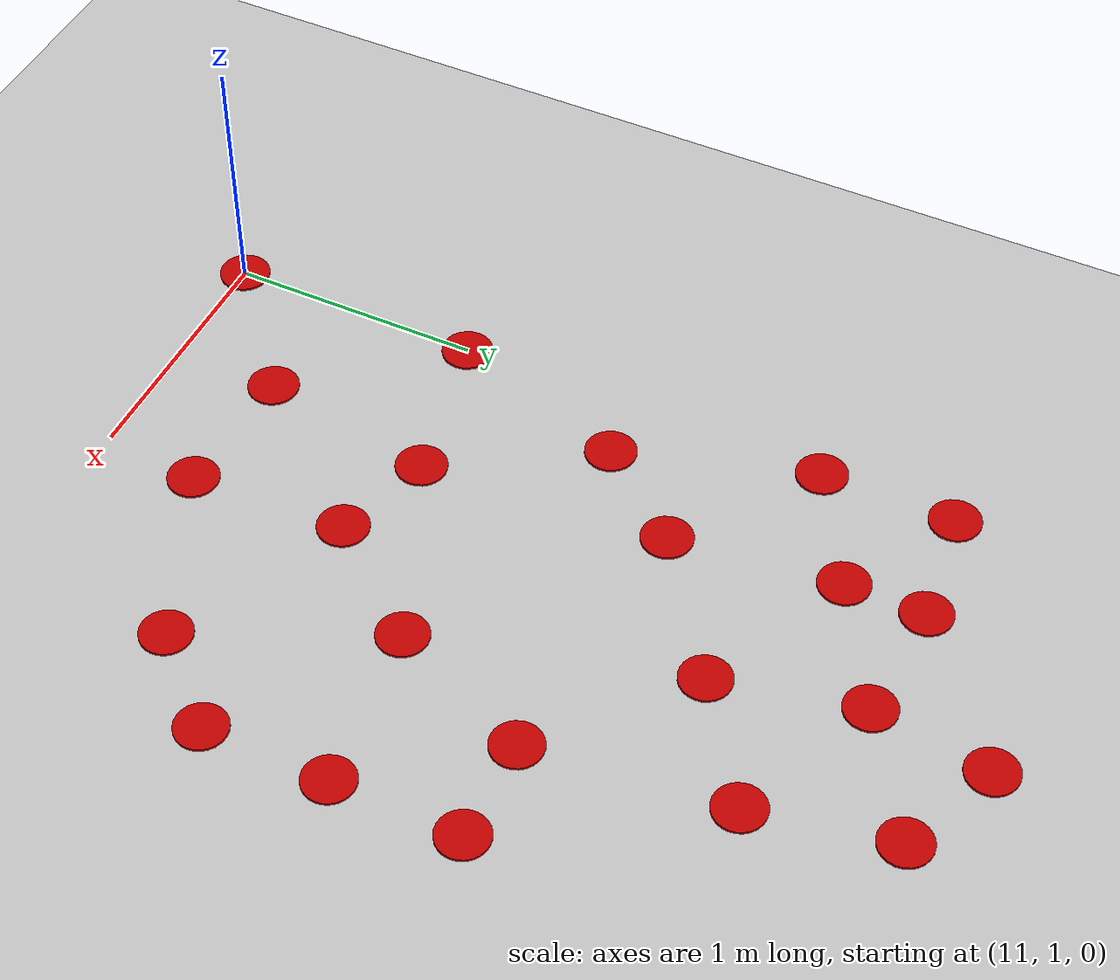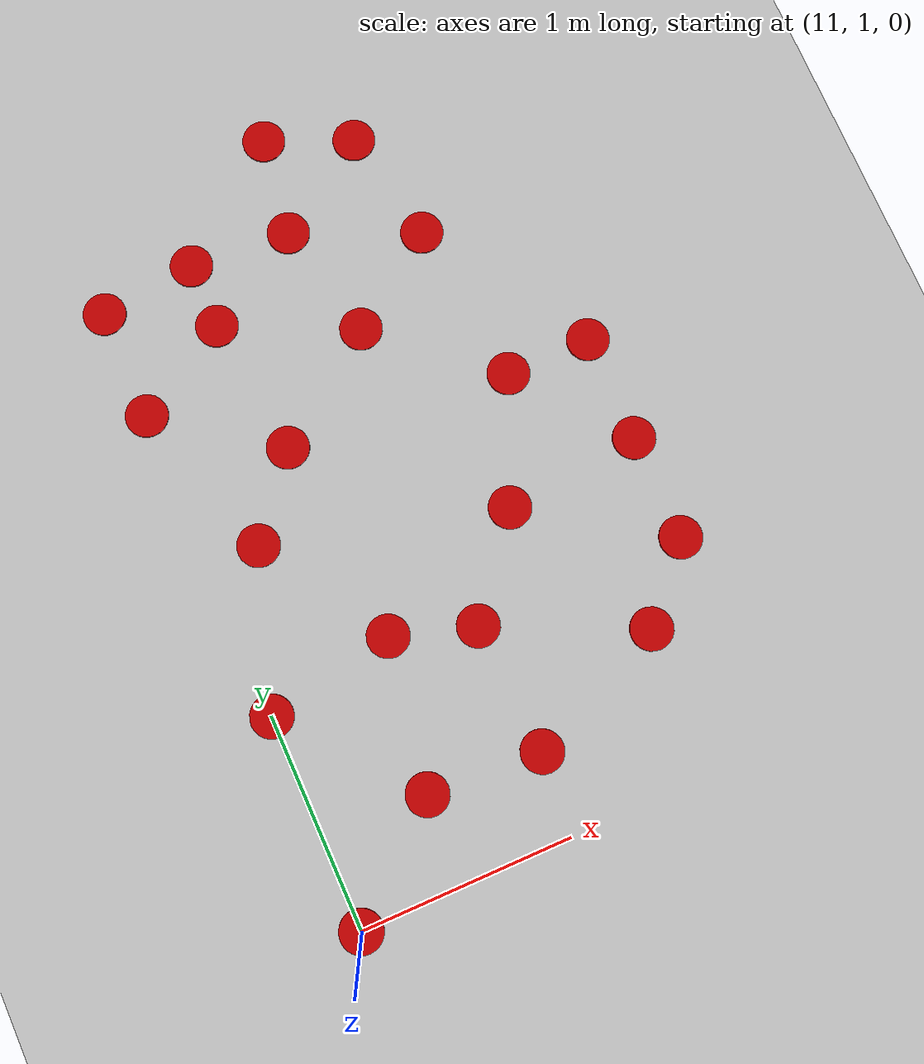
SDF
<sdf version="1.7">
 <world name="default">
  <model name="ground_plane">
   <static>1</static>
   <link name="link">
    <collision name="collision">
     <geometry><plane><normal>0 0 1</normal><size>100 100</size></plane></geometry>
     <surface>
      <contact><collide_bitmask>65535</collide_bitmask></contact>
      <friction><ode><mu>100</mu><mu2>50</mu2></ode></friction>
     </surface>
    </collision>
    <visual name="visual">
     <cast_shadows>0</cast_shadows>
     <geometry><plane><normal>0 0 1</normal><size>100 100</size></plane></geometry>
     <material>
      <script><uri>file://media/materials/scripts/gazebo.material</uri><name>Gazebo/Grey</name></script>
     </material>
    </visual>
   </link>
  </model>
  <model name="target_red">
   <link name="link">
    <inertial>
     <mass>1</mass>
     <inertia><ixx>0.145833</ixx><ixy>0</ixy><ixz>0</ixz><iyy>0.145833</iyy><iyz>0</iyz><izz>0.125</izz></inertia>
    </inertial>
    <visual name="visual">
     <geometry><cylinder><radius>0.1</radius><length>0.01</length></cylinder></geometry>
     <material>
      <script><name>Gazebo/Grey</name><uri>file://media/materials/scripts/gazebo.material</uri></script>
      <shader type="pixel"><normal_map>__default__</normal_map></shader>
      <ambient>0.8 0 0 1</ambient>
      <diffuse>0.8 0 0 1</diffuse>
      <specular>0.8 0 0 1</specular>
      <emissive>0 0 0 1</emissive>
     </material>
    </visual>
    <collision name="collision">
     <geometry><cylinder><radius>0.1</radius><length>0.01</length></cylinder></geometry>
     <surface>
      <friction>
       <ode><mu>1</mu><mu2>1</mu2><fdir1>0 0 0</fdir1><slip1>0</slip1><slip2>0</slip2></ode>
       <torsional>
        <coefficient>1</coefficient>
        <patch_radius>0</patch_radius>
        <surface_radius>0</surface_radius>
        <use_patch_radius>1</use_patch_radius>
        <ode><slip>0</slip></ode>
       </torsional>
      </friction>
      <bounce><restitution_coefficient>0</restitution_coefficient><threshold>1e+06</threshold></bounce>
      <contact>
       <collide_without_contact>0</collide_without_contact>
       <collide_without_contact_bitmask>1</collide_without_contact_bitmask>
       <collide_bitmask>1</collide_bitmask>
       <ode>
        <soft_cfm>0</soft_cfm>
        <soft_erp>0.2</soft_erp>
        <kp>1e+13</kp>
        <kd>1</kd>
        <max_vel>0.01</max_vel>
        <min_depth>0</min_depth>
       </ode>
       <bullet>
        <split_impulse>1</split_impulse>
        <split_impulse_penetration_threshold>-0.01</split_impulse_penetration_threshold>
        <soft_cfm>0</soft_cfm>
        <soft_erp>0.2</soft_erp>
        <kp>1e+13</kp>
        <kd>1</kd>
       </bullet>
      </contact>
     </surface>
    </collision>
   </link>
   <static>0</static>
   <pose>11.455 3.74189 0 0 -0 0</pose>
  </model>
  <model name="target_red_clone_0">
   <link name="link">
    <inertial>
     <mass>1</mass>
     <inertia><ixx>0.145833</ixx><ixy>0</ixy><ixz>0</ixz><iyy>0.145833</iyy><iyz>0</iyz><izz>0.125</izz></inertia>
    </inertial>
    <visual name="visual">
     <geometry><cylinder><radius>0.1</radius><length>0.01</length></cylinder></geometry>
     <material>
      <script><name>Gazebo/Grey</name><uri>file://media/materials/scripts/gazebo.material</uri></script>
      <shader type="pixel"><normal_map>__default__</normal_map></shader>
      <ambient>0.8 0 0 1</ambient>
      <diffuse>0.8 0 0 1</diffuse>
      <specular>0.8 0 0 1</specular>
      <emissive>0 0 0 1</emissive>
     </material>
    </visual>
    <collision name="collision">
     <geometry><cylinder><radius>0.1</radius><length>0.01</length></cylinder></geometry>
     <surface>
      <friction>
       <ode><mu>1</mu><mu2>1</mu2><fdir1>0 0 0</fdir1><slip1>0</slip1><slip2>0</slip2></ode>
       <torsional>
        <coefficient>1</coefficient>
        <patch_radius>0</patch_radius>
        <surface_radius>0</surface_radius>
        <use_patch_radius>1</use_patch_radius>
        <ode><slip>0</slip></ode>
       </torsional>
      </friction>
      <bounce><restitution_coefficient>0</restitution_coefficient><threshold>1e+06</threshold></bounce>
      <contact>
       <collide_without_contact>0</collide_without_contact>
       <collide_without_contact_bitmask>1</collide_without_contact_bitmask>
       <collide_bitmask>1</collide_bitmask>
       <ode>
        <soft_cfm>0</soft_cfm>
        <soft_erp>0.2</soft_erp>
        <kp>1e+13</kp>
        <kd>1</kd>
        <max_vel>0.01</max_vel>
        <min_depth>0</min_depth>
       </ode>
       <bullet>
        <split_impulse>1</split_impulse>
        <split_impulse_penetration_threshold>-0.01</split_impulse_penetration_threshold>
        <soft_cfm>0</soft_cfm>
        <soft_erp>0.2</soft_erp>
        <kp>1e+13</kp>
        <kd>1</kd>
       </bullet>
      </contact>
     </surface>
    </collision>
   </link>
   <static>0</static>
   <pose>12.06 3.46329 0 0 -0 0</pose>
  </model>
  <model name="target_red_clone_2">
   <link name="link">
    <inertial>
     <mass>1</mass>
     <inertia><ixx>0.145833</ixx><ixy>0</ixy><ixz>0</ixz><iyy>0.145833</iyy><iyz>0</iyz><izz>0.125</izz></inertia>
    </inertial>
    <visual name="visual">
     <geometry><cylinder><radius>0.1</radius><length>0.01</length></cylinder></geometry>
     <material>
      <script><name>Gazebo/Grey</name><uri>file://media/materials/scripts/gazebo.material</uri></script>
      <shader type="pixel"><normal_map>__default__</normal_map></shader>
      <ambient>0.8 0 0 1</ambient>
      <diffuse>0.8 0 0 1</diffuse>
      <specular>0.8 0 0 1</specular>
      <emissive>0 0 0 1</emissive>
     </material>
    </visual>
    <collision name="collision">
     <geometry><cylinder><radius>0.1</radius><length>0.01</length></cylinder></geometry>
     <surface>
      <friction>
       <ode><mu>1</mu><mu2>1</mu2><fdir1>0 0 0</fdir1><slip1>0</slip1><slip2>0</slip2></ode>
       <torsional>
        <coefficient>1</coefficient>
        <patch_radius>0</patch_radius>
        <surface_radius>0</surface_radius>
        <use_patch_radius>1</use_patch_radius>
        <ode><slip>0</slip></ode>
       </torsional>
      </friction>
      <bounce><restitution_coefficient>0</restitution_coefficient><threshold>1e+06</threshold></bounce>
      <contact>
       <collide_without_contact>0</collide_without_contact>
       <collide_without_contact_bitmask>1</collide_without_contact_bitmask>
       <collide_bitmask>1</collide_bitmask>
       <ode>
        <soft_cfm>0</soft_cfm>
        <soft_erp>0.2</soft_erp>
        <kp>1e+13</kp>
        <kd>1</kd>
        <max_vel>0.01</max_vel>
        <min_depth>0</min_depth>
       </ode>
       <bullet>
        <split_impulse>1</split_impulse>
        <split_impulse_penetration_threshold>-0.01</split_impulse_penetration_threshold>
        <soft_cfm>0</soft_cfm>
        <soft_erp>0.2</soft_erp>
        <kp>1e+13</kp>
        <kd>1</kd>
       </bullet>
      </contact>
     </surface>
    </collision>
   </link>
   <static>0</static>
   <pose>11.2388 2.72416 0 0 -0 0</pose>
  </model>
  <model name="target_red_clone_4">
   <link name="link">
    <inertial>
     <mass>1</mass>
     <inertia><ixx>0.145833</ixx><ixy>0</ixy><ixz>0</ixz><iyy>0.145833</iyy><iyz>0</iyz><izz>0.125</izz></inertia>
    </inertial>
    <visual name="visual">
     <geometry><cylinder><radius>0.1</radius><length>0.01</length></cylinder></geometry>
     <material>
      <script><name>Gazebo/Grey</name><uri>file://media/materials/scripts/gazebo.material</uri></script>
      <shader type="pixel"><normal_map>__default__</normal_map></shader>
      <ambient>0.8 0 0 1</ambient>
      <diffuse>0.8 0 0 1</diffuse>
      <specular>0.8 0 0 1</specular>
      <emissive>0 0 0 1</emissive>
     </material>
    </visual>
    <collision name="collision">
     <geometry><cylinder><radius>0.1</radius><length>0.01</length></cylinder></geometry>
     <surface>
      <friction>
       <ode><mu>1</mu><mu2>1</mu2><fdir1>0 0 0</fdir1><slip1>0</slip1><slip2>0</slip2></ode>
       <torsional>
        <coefficient>1</coefficient>
        <patch_radius>0</patch_radius>
        <surface_radius>0</surface_radius>
        <use_patch_radius>1</use_patch_radius>
        <ode><slip>0</slip></ode>
       </torsional>
      </friction>
      <bounce><restitution_coefficient>0</restitution_coefficient><threshold>1e+06</threshold></bounce>
      <contact>
       <collide_without_contact>0</collide_without_contact>
       <collide_without_contact_bitmask>1</collide_without_contact_bitmask>
       <collide_bitmask>1</collide_bitmask>
       <ode>
        <soft_cfm>0</soft_cfm>
        <soft_erp>0.2</soft_erp>
        <kp>1e+13</kp>
        <kd>1</kd>
        <max_vel>0.01</max_vel>
        <min_depth>0</min_depth>
       </ode>
       <bullet>
        <split_impulse>1</split_impulse>
        <split_impulse_penetration_threshold>-0.01</split_impulse_penetration_threshold>
        <soft_cfm>0</soft_cfm>
        <soft_erp>0.2</soft_erp>
        <kp>1e+13</kp>
        <kd>1</kd>
       </bullet>
      </contact>
     </surface>
    </collision>
   </link>
   <static>0</static>
   <pose>11.5344 3.08517 0 0 -0 0</pose>
  </model>
  <model name="target_red_clone_5">
   <link name="link">
    <inertial>
     <mass>1</mass>
     <inertia><ixx>0.145833</ixx><ixy>0</ixy><ixz>0</ixz><iyy>0.145833</iyy><iyz>0</iyz><izz>0.125</izz></inertia>
    </inertial>
    <visual name="visual">
     <geometry><cylinder><radius>0.1</radius><length>0.01</length></cylinder></geometry>
     <material>
      <script><name>Gazebo/Grey</name><uri>file://media/materials/scripts/gazebo.material</uri></script>
      <shader type="pixel"><normal_map>__default__</normal_map></shader>
      <ambient>0.8 0 0 1</ambient>
      <diffuse>0.8 0 0 1</diffuse>
      <specular>0.8 0 0 1</specular>
      <emissive>0 0 0 1</emissive>
     </material>
    </visual>
    <collision name="collision">
     <geometry><cylinder><radius>0.1</radius><length>0.01</length></cylinder></geometry>
     <surface>
      <friction>
       <ode><mu>1</mu><mu2>1</mu2><fdir1>0 0 0</fdir1><slip1>0</slip1><slip2>0</slip2></ode>
       <torsional>
        <coefficient>1</coefficient>
        <patch_radius>0</patch_radius>
        <surface_radius>0</surface_radius>
        <use_patch_radius>1</use_patch_radius>
        <ode><slip>0</slip></ode>
       </torsional>
      </friction>
      <bounce><restitution_coefficient>0</restitution_coefficient><threshold>1e+06</threshold></bounce>
      <contact>
       <collide_without_contact>0</collide_without_contact>
       <collide_without_contact_bitmask>1</collide_without_contact_bitmask>
       <collide_bitmask>1</collide_bitmask>
       <ode>
        <soft_cfm>0</soft_cfm>
        <soft_erp>0.2</soft_erp>
        <kp>1e+13</kp>
        <kd>1</kd>
        <max_vel>0.01</max_vel>
        <min_depth>0</min_depth>
       </ode>
       <bullet>
        <split_impulse>1</split_impulse>
        <split_impulse_penetration_threshold>-0.01</split_impulse_penetration_threshold>
        <soft_cfm>0</soft_cfm>
        <soft_erp>0.2</soft_erp>
        <kp>1e+13</kp>
        <kd>1</kd>
       </bullet>
      </contact>
     </surface>
    </collision>
   </link>
   <static>0</static>
   <pose>11 3.47823 0 0 -0 0</pose>
  </model>
  <model name="target_red_clone_7">
   <link name="link">
    <inertial>
     <mass>1</mass>
     <inertia><ixx>0.145833</ixx><ixy>0</ixy><ixz>0</ixz><iyy>0.145833</iyy><iyz>0</iyz><izz>0.125</izz></inertia>
    </inertial>
    <visual name="visual">
     <geometry><cylinder><radius>0.1</radius><length>0.01</length></cylinder></geometry>
     <material>
      <script><name>Gazebo/Grey</name><uri>file://media/materials/scripts/gazebo.material</uri></script>
      <shader type="pixel"><normal_map>__default__</normal_map></shader>
      <ambient>0.8 0 0 1</ambient>
      <diffuse>0.8 0 0 1</diffuse>
      <specular>0.8 0 0 1</specular>
      <emissive>0 0 0 1</emissive>
     </material>
    </visual>
    <collision name="collision">
     <geometry><cylinder><radius>0.1</radius><length>0.01</length></cylinder></geometry>
     <surface>
      <friction>
       <ode><mu>1</mu><mu2>1</mu2><fdir1>0 0 0</fdir1><slip1>0</slip1><slip2>0</slip2></ode>
       <torsional>
        <coefficient>1</coefficient>
        <patch_radius>0</patch_radius>
        <surface_radius>0</surface_radius>
        <use_patch_radius>1</use_patch_radius>
        <ode><slip>0</slip></ode>
       </torsional>
      </friction>
      <bounce><restitution_coefficient>0</restitution_coefficient><threshold>1e+06</threshold></bounce>
      <contact>
       <collide_without_contact>0</collide_without_contact>
       <collide_without_contact_bitmask>1</collide_without_contact_bitmask>
       <collide_bitmask>1</collide_bitmask>
       <ode>
        <soft_cfm>0</soft_cfm>
        <soft_erp>0.2</soft_erp>
        <kp>1e+13</kp>
        <kd>1</kd>
        <max_vel>0.01</max_vel>
        <min_depth>0</min_depth>
       </ode>
       <bullet>
        <split_impulse>1</split_impulse>
        <split_impulse_penetration_threshold>-0.01</split_impulse_penetration_threshold>
        <soft_cfm>0</soft_cfm>
        <soft_erp>0.2</soft_erp>
        <kp>1e+13</kp>
        <kd>1</kd>
       </bullet>
      </contact>
     </surface>
    </collision>
   </link>
   <static>0</static>
   <pose>11 4 0 0 -0 0</pose>
  </model>
  <model name="target_red_clone_8">
   <link name="link">
    <inertial>
     <mass>1</mass>
     <inertia><ixx>0.145833</ixx><ixy>0</ixy><ixz>0</ixz><iyy>0.145833</iyy><iyz>0</iyz><izz>0.125</izz></inertia>
    </inertial>
    <visual name="visual">
     <geometry><cylinder><radius>0.1</radius><length>0.01</length></cylinder></geometry>
     <material>
      <script><name>Gazebo/Grey</name><uri>file://media/materials/scripts/gazebo.material</uri></script>
      <shader type="pixel"><normal_map>__default__</normal_map></shader>
      <ambient>0.8 0 0 1</ambient>
      <diffuse>0.8 0 0 1</diffuse>
      <specular>0.8 0 0 1</specular>
      <emissive>0 0 0 1</emissive>
     </material>
    </visual>
    <collision name="collision">
     <geometry><cylinder><radius>0.1</radius><length>0.01</length></cylinder></geometry>
     <surface>
      <friction>
       <ode><mu>1</mu><mu2>1</mu2><fdir1>0 0 0</fdir1><slip1>0</slip1><slip2>0</slip2></ode>
       <torsional>
        <coefficient>1</coefficient>
        <patch_radius>0</patch_radius>
        <surface_radius>0</surface_radius>
        <use_patch_radius>1</use_patch_radius>
        <ode><slip>0</slip></ode>
       </torsional>
      </friction>
      <bounce><restitution_coefficient>0</restitution_coefficient><threshold>1e+06</threshold></bounce>
      <contact>
       <collide_without_contact>0</collide_without_contact>
       <collide_without_contact_bitmask>1</collide_without_contact_bitmask>
       <collide_bitmask>1</collide_bitmask>
       <ode>
        <soft_cfm>0</soft_cfm>
        <soft_erp>0.2</soft_erp>
        <kp>1e+13</kp>
        <kd>1</kd>
        <max_vel>0.01</max_vel>
        <min_depth>0</min_depth>
       </ode>
       <bullet>
        <split_impulse>1</split_impulse>
        <split_impulse_penetration_threshold>-0.01</split_impulse_penetration_threshold>
        <soft_cfm>0</soft_cfm>
        <soft_erp>0.2</soft_erp>
        <kp>1e+13</kp>
        <kd>1</kd>
       </bullet>
      </contact>
     </surface>
    </collision>
   </link>
   <static>0</static>
   <pose>11.4561 4.05437 0 0 -0 0</pose>
  </model>
  <model name="target_red_clone_9">
   <link name="link">
    <inertial>
     <mass>1</mass>
     <inertia><ixx>0.145833</ixx><ixy>0</ixy><ixz>0</ixz><iyy>0.145833</iyy><iyz>0</iyz><izz>0.125</izz></inertia>
    </inertial>
    <visual name="visual">
     <geometry><cylinder><radius>0.1</radius><length>0.01</length></cylinder></geometry>
     <material>
      <script><name>Gazebo/Grey</name><uri>file://media/materials/scripts/gazebo.material</uri></script>
      <shader type="pixel"><normal_map>__default__</normal_map></shader>
      <ambient>0.8 0 0 1</ambient>
      <diffuse>0.8 0 0 1</diffuse>
      <specular>0.8 0 0 1</specular>
      <emissive>0 0 0 1</emissive>
     </material>
    </visual>
    <collision name="collision">
     <geometry><cylinder><radius>0.1</radius><length>0.01</length></cylinder></geometry>
     <surface>
      <friction>
       <ode><mu>1</mu><mu2>1</mu2><fdir1>0 0 0</fdir1><slip1>0</slip1><slip2>0</slip2></ode>
       <torsional>
        <coefficient>1</coefficient>
        <patch_radius>0</patch_radius>
        <surface_radius>0</surface_radius>
        <use_patch_radius>1</use_patch_radius>
        <ode><slip>0</slip></ode>
       </torsional>
      </friction>
      <bounce><restitution_coefficient>0</restitution_coefficient><threshold>1e+06</threshold></bounce>
      <contact>
       <collide_without_contact>0</collide_without_contact>
       <collide_without_contact_bitmask>1</collide_without_contact_bitmask>
       <collide_bitmask>1</collide_bitmask>
       <ode>
        <soft_cfm>0</soft_cfm>
        <soft_erp>0.2</soft_erp>
        <kp>1e+13</kp>
        <kd>1</kd>
        <max_vel>0.01</max_vel>
        <min_depth>0</min_depth>
       </ode>
       <bullet>
        <split_impulse>1</split_impulse>
        <split_impulse_penetration_threshold>-0.01</split_impulse_penetration_threshold>
        <soft_cfm>0</soft_cfm>
        <soft_erp>0.2</soft_erp>
        <kp>1e+13</kp>
        <kd>1</kd>
       </bullet>
      </contact>
     </surface>
    </collision>
   </link>
   <static>0</static>
   <pose>11.9315 4.02206 0 0 -0 0</pose>
  </model>
  <model name="target_red_clone_10">
   <link name="link">
    <inertial>
     <mass>1</mass>
     <inertia><ixx>0.145833</ixx><ixy>0</ixy><ixz>0</ixz><iyy>0.145833</iyy><iyz>0</iyz><izz>0.125</izz></inertia>
    </inertial>
    <visual name="visual">
     <geometry><cylinder><radius>0.1</radius><length>0.01</length></cylinder></geometry>
     <material>
      <script><name>Gazebo/Grey</name><uri>file://media/materials/scripts/gazebo.material</uri></script>
      <shader type="pixel"><normal_map>__default__</normal_map></shader>
      <ambient>0.8 0 0 1</ambient>
      <diffuse>0.8 0 0 1</diffuse>
      <specular>0.8 0 0 1</specular>
      <emissive>0 0 0 1</emissive>
     </material>
    </visual>
    <collision name="collision">
     <geometry><cylinder><radius>0.1</radius><length>0.01</length></cylinder></geometry>
     <surface>
      <friction>
       <ode><mu>1</mu><mu2>1</mu2><fdir1>0 0 0</fdir1><slip1>0</slip1><slip2>0</slip2></ode>
       <torsional>
        <coefficient>1</coefficient>
        <patch_radius>0</patch_radius>
        <surface_radius>0</surface_radius>
        <use_patch_radius>1</use_patch_radius>
        <ode><slip>0</slip></ode>
       </torsional>
      </friction>
      <bounce><restitution_coefficient>0</restitution_coefficient><threshold>1e+06</threshold></bounce>
      <contact>
       <collide_without_contact>0</collide_without_contact>
       <collide_without_contact_bitmask>1</collide_without_contact_bitmask>
       <collide_bitmask>1</collide_bitmask>
       <ode>
        <soft_cfm>0</soft_cfm>
        <soft_erp>0.2</soft_erp>
        <kp>1e+13</kp>
        <kd>1</kd>
        <max_vel>0.01</max_vel>
        <min_depth>0</min_depth>
       </ode>
       <bullet>
        <split_impulse>1</split_impulse>
        <split_impulse_penetration_threshold>-0.01</split_impulse_penetration_threshold>
        <soft_cfm>0</soft_cfm>
        <soft_erp>0.2</soft_erp>
        <kp>1e+13</kp>
        <kd>1</kd>
       </bullet>
      </contact>
     </surface>
    </collision>
   </link>
   <static>0</static>
   <pose>12.5038 3.77602 0 0 -0 0</pose>
  </model>
  <model name="target_red_clone_11">
   <link name="link">
    <inertial>
     <mass>1</mass>
     <inertia><ixx>0.145833</ixx><ixy>0</ixy><ixz>0</ixz><iyy>0.145833</iyy><iyz>0</iyz><izz>0.125</izz></inertia>
    </inertial>
    <visual name="visual">
     <geometry><cylinder><radius>0.1</radius><length>0.01</length></cylinder></geometry>
     <material>
      <script><name>Gazebo/Grey</name><uri>file://media/materials/scripts/gazebo.material</uri></script>
      <shader type="pixel"><normal_map>__default__</normal_map></shader>
      <ambient>0.8 0 0 1</ambient>
      <diffuse>0.8 0 0 1</diffuse>
      <specular>0.8 0 0 1</specular>
      <emissive>0 0 0 1</emissive>
     </material>
    </visual>
    <collision name="collision">
     <geometry><cylinder><radius>0.1</radius><length>0.01</length></cylinder></geometry>
     <surface>
      <friction>
       <ode><mu>1</mu><mu2>1</mu2><fdir1>0 0 0</fdir1><slip1>0</slip1><slip2>0</slip2></ode>
       <torsional>
        <coefficient>1</coefficient>
        <patch_radius>0</patch_radius>
        <surface_radius>0</surface_radius>
        <use_patch_radius>1</use_patch_radius>
        <ode><slip>0</slip></ode>
       </torsional>
      </friction>
      <bounce><restitution_coefficient>0</restitution_coefficient><threshold>1e+06</threshold></bounce>
      <contact>
       <collide_without_contact>0</collide_without_contact>
       <collide_without_contact_bitmask>1</collide_without_contact_bitmask>
       <collide_bitmask>1</collide_bitmask>
       <ode>
        <soft_cfm>0</soft_cfm>
        <soft_erp>0.2</soft_erp>
        <kp>1e+13</kp>
        <kd>1</kd>
        <max_vel>0.01</max_vel>
        <min_depth>0</min_depth>
       </ode>
       <bullet>
        <split_impulse>1</split_impulse>
        <split_impulse_penetration_threshold>-0.01</split_impulse_penetration_threshold>
        <soft_cfm>0</soft_cfm>
        <soft_erp>0.2</soft_erp>
        <kp>1e+13</kp>
        <kd>1</kd>
       </bullet>
      </contact>
     </surface>
    </collision>
   </link>
   <static>0</static>
   <pose>12.5983 3 0 0 -0 0</pose>
  </model>
  <model name="target_red_clone_12">
   <link name="link">
    <inertial>
     <mass>1</mass>
     <inertia><ixx>0.145833</ixx><ixy>0</ixy><ixz>0</ixz><iyy>0.145833</iyy><iyz>0</iyz><izz>0.125</izz></inertia>
    </inertial>
    <visual name="visual">
     <geometry><cylinder><radius>0.1</radius><length>0.01</length></cylinder></geometry>
     <material>
      <script><name>Gazebo/Grey</name><uri>file://media/materials/scripts/gazebo.material</uri></script>
      <shader type="pixel"><normal_map>__default__</normal_map></shader>
      <ambient>0.8 0 0 1</ambient>
      <diffuse>0.8 0 0 1</diffuse>
      <specular>0.8 0 0 1</specular>
      <emissive>0 0 0 1</emissive>
     </material>
    </visual>
    <collision name="collision">
     <geometry><cylinder><radius>0.1</radius><length>0.01</length></cylinder></geometry>
     <surface>
      <friction>
       <ode><mu>1</mu><mu2>1</mu2><fdir1>0 0 0</fdir1><slip1>0</slip1><slip2>0</slip2></ode>
       <torsional>
        <coefficient>1</coefficient>
        <patch_radius>0</patch_radius>
        <surface_radius>0</surface_radius>
        <use_patch_radius>1</use_patch_radius>
        <ode><slip>0</slip></ode>
       </torsional>
      </friction>
      <bounce><restitution_coefficient>0</restitution_coefficient><threshold>1e+06</threshold></bounce>
      <contact>
       <collide_without_contact>0</collide_without_contact>
       <collide_without_contact_bitmask>1</collide_without_contact_bitmask>
       <collide_bitmask>1</collide_bitmask>
       <ode>
        <soft_cfm>0</soft_cfm>
        <soft_erp>0.2</soft_erp>
        <kp>1e+13</kp>
        <kd>1</kd>
        <max_vel>0.01</max_vel>
        <min_depth>0</min_depth>
       </ode>
       <bullet>
        <split_impulse>1</split_impulse>
        <split_impulse_penetration_threshold>-0.01</split_impulse_penetration_threshold>
        <soft_cfm>0</soft_cfm>
        <soft_erp>0.2</soft_erp>
        <kp>1e+13</kp>
        <kd>1</kd>
       </bullet>
      </contact>
     </surface>
    </collision>
   </link>
   <static>0</static>
   <pose>12.3494 2.4307 0 0 -0 0</pose>
  </model>
  <model name="target_red_clone_13">
   <link name="link">
    <inertial>
     <mass>1</mass>
     <inertia><ixx>0.145833</ixx><ixy>0</ixy><ixz>0</ixz><iyy>0.145833</iyy><iyz>0</iyz><izz>0.125</izz></inertia>
    </inertial>
    <visual name="visual">
     <geometry><cylinder><radius>0.1</radius><length>0.01</length></cylinder></geometry>
     <material>
      <script><name>Gazebo/Grey</name><uri>file://media/materials/scripts/gazebo.material</uri></script>
      <shader type="pixel"><normal_map>__default__</normal_map></shader>
      <ambient>0.8 0 0 1</ambient>
      <diffuse>0.8 0 0 1</diffuse>
      <specular>0.8 0 0 1</specular>
      <emissive>0 0 0 1</emissive>
     </material>
    </visual>
    <collision name="collision">
     <geometry><cylinder><radius>0.1</radius><length>0.01</length></cylinder></geometry>
     <surface>
      <friction>
       <ode><mu>1</mu><mu2>1</mu2><fdir1>0 0 0</fdir1><slip1>0</slip1><slip2>0</slip2></ode>
       <torsional>
        <coefficient>1</coefficient>
        <patch_radius>0</patch_radius>
        <surface_radius>0</surface_radius>
        <use_patch_radius>1</use_patch_radius>
        <ode><slip>0</slip></ode>
       </torsional>
      </friction>
      <bounce><restitution_coefficient>0</restitution_coefficient><threshold>1e+06</threshold></bounce>
      <contact>
       <collide_without_contact>0</collide_without_contact>
       <collide_without_contact_bitmask>1</collide_without_contact_bitmask>
       <collide_bitmask>1</collide_bitmask>
       <ode>
        <soft_cfm>0</soft_cfm>
        <soft_erp>0.2</soft_erp>
        <kp>1e+13</kp>
        <kd>1</kd>
        <max_vel>0.01</max_vel>
        <min_depth>0</min_depth>
       </ode>
       <bullet>
        <split_impulse>1</split_impulse>
        <split_impulse_penetration_threshold>-0.01</split_impulse_penetration_threshold>
        <soft_cfm>0</soft_cfm>
        <soft_erp>0.2</soft_erp>
        <kp>1e+13</kp>
        <kd>1</kd>
       </bullet>
      </contact>
     </surface>
    </collision>
   </link>
   <static>0</static>
   <pose>11.6125 2.11903 0 0 -0 0</pose>
  </model>
  <model name="target_red_clone_14">
   <link name="link">
    <inertial>
     <mass>1</mass>
     <inertia><ixx>0.145833</ixx><ixy>0</ixy><ixz>0</ixz><iyy>0.145833</iyy><iyz>0</iyz><izz>0.125</izz></inertia>
    </inertial>
    <visual name="visual">
     <geometry><cylinder><radius>0.1</radius><length>0.01</length></cylinder></geometry>
     <material>
      <script><name>Gazebo/Grey</name><uri>file://media/materials/scripts/gazebo.material</uri></script>
      <shader type="pixel"><normal_map>__default__</normal_map></shader>
      <ambient>0.8 0 0 1</ambient>
      <diffuse>0.8 0 0 1</diffuse>
      <specular>0.8 0 0 1</specular>
      <emissive>0 0 0 1</emissive>
     </material>
    </visual>
    <collision name="collision">
     <geometry><cylinder><radius>0.1</radius><length>0.01</length></cylinder></geometry>
     <surface>
      <friction>
       <ode><mu>1</mu><mu2>1</mu2><fdir1>0 0 0</fdir1><slip1>0</slip1><slip2>0</slip2></ode>
       <torsional>
        <coefficient>1</coefficient>
        <patch_radius>0</patch_radius>
        <surface_radius>0</surface_radius>
        <use_patch_radius>1</use_patch_radius>
        <ode><slip>0</slip></ode>
       </torsional>
      </friction>
      <bounce><restitution_coefficient>0</restitution_coefficient><threshold>1e+06</threshold></bounce>
      <contact>
       <collide_without_contact>0</collide_without_contact>
       <collide_without_contact_bitmask>1</collide_without_contact_bitmask>
       <collide_bitmask>1</collide_bitmask>
       <ode>
        <soft_cfm>0</soft_cfm>
        <soft_erp>0.2</soft_erp>
        <kp>1e+13</kp>
        <kd>1</kd>
        <max_vel>0.01</max_vel>
        <min_depth>0</min_depth>
       </ode>
       <bullet>
        <split_impulse>1</split_impulse>
        <split_impulse_penetration_threshold>-0.01</split_impulse_penetration_threshold>
        <soft_cfm>0</soft_cfm>
        <soft_erp>0.2</soft_erp>
        <kp>1e+13</kp>
        <kd>1</kd>
       </bullet>
      </contact>
     </surface>
    </collision>
   </link>
   <static>0</static>
   <pose>12 2 0 0 -0 0</pose>
  </model>
  <model name="target_red_clone_15">
   <link name="link">
    <inertial>
     <mass>1</mass>
     <inertia><ixx>0.145833</ixx><ixy>0</ixy><ixz>0</ixz><iyy>0.145833</iyy><iyz>0</iyz><izz>0.125</izz></inertia>
    </inertial>
    <visual name="visual">
     <geometry><cylinder><radius>0.1</radius><length>0.01</length></cylinder></geometry>
     <material>
      <script><name>Gazebo/Grey</name><uri>file://media/materials/scripts/gazebo.material</uri></script>
      <shader type="pixel"><normal_map>__default__</normal_map></shader>
      <ambient>0.8 0 0 1</ambient>
      <diffuse>0.8 0 0 1</diffuse>
      <specular>0.8 0 0 1</specular>
      <emissive>0 0 0 1</emissive>
     </material>
    </visual>
    <collision name="collision">
     <geometry><cylinder><radius>0.1</radius><length>0.01</length></cylinder></geometry>
     <surface>
      <friction>
       <ode><mu>1</mu><mu2>1</mu2><fdir1>0 0 0</fdir1><slip1>0</slip1><slip2>0</slip2></ode>
       <torsional>
        <coefficient>1</coefficient>
        <patch_radius>0</patch_radius>
        <surface_radius>0</surface_radius>
        <use_patch_radius>1</use_patch_radius>
        <ode><slip>0</slip></ode>
       </torsional>
      </friction>
      <bounce><restitution_coefficient>0</restitution_coefficient><threshold>1e+06</threshold></bounce>
      <contact>
       <collide_without_contact>0</collide_without_contact>
       <collide_without_contact_bitmask>1</collide_without_contact_bitmask>
       <collide_bitmask>1</collide_bitmask>
       <ode>
        <soft_cfm>0</soft_cfm>
        <soft_erp>0.2</soft_erp>
        <kp>1e+13</kp>
        <kd>1</kd>
        <max_vel>0.01</max_vel>
        <min_depth>0</min_depth>
       </ode>
       <bullet>
        <split_impulse>1</split_impulse>
        <split_impulse_penetration_threshold>-0.01</split_impulse_penetration_threshold>
        <soft_cfm>0</soft_cfm>
        <soft_erp>0.2</soft_erp>
        <kp>1e+13</kp>
        <kd>1</kd>
       </bullet>
      </contact>
     </surface>
    </collision>
   </link>
   <static>0</static>
   <pose>12.7048 1.67914 0 0 -0 0</pose>
  </model>
  <model name="target_red_clone_16">
   <link name="link">
    <inertial>
     <mass>1</mass>
     <inertia><ixx>0.145833</ixx><ixy>0</ixy><ixz>0</ixz><iyy>0.145833</iyy><iyz>0</iyz><izz>0.125</izz></inertia>
    </inertial>
    <visual name="visual">
     <geometry><cylinder><radius>0.1</radius><length>0.01</length></cylinder></geometry>
     <material>
      <script><name>Gazebo/Grey</name><uri>file://media/materials/scripts/gazebo.material</uri></script>
      <shader type="pixel"><normal_map>__default__</normal_map></shader>
      <ambient>0.8 0 0 1</ambient>
      <diffuse>0.8 0 0 1</diffuse>
      <specular>0.8 0 0 1</specular>
      <emissive>0 0 0 1</emissive>
     </material>
    </visual>
    <collision name="collision">
     <geometry><cylinder><radius>0.1</radius><length>0.01</length></cylinder></geometry>
     <surface>
      <friction>
       <ode><mu>1</mu><mu2>1</mu2><fdir1>0 0 0</fdir1><slip1>0</slip1><slip2>0</slip2></ode>
       <torsional>
        <coefficient>1</coefficient>
        <patch_radius>0</patch_radius>
        <surface_radius>0</surface_radius>
        <use_patch_radius>1</use_patch_radius>
        <ode><slip>0</slip></ode>
       </torsional>
      </friction>
      <bounce><restitution_coefficient>0</restitution_coefficient><threshold>1e+06</threshold></bounce>
      <contact>
       <collide_without_contact>0</collide_without_contact>
       <collide_without_contact_bitmask>1</collide_without_contact_bitmask>
       <collide_bitmask>1</collide_bitmask>
       <ode>
        <soft_cfm>0</soft_cfm>
        <soft_erp>0.2</soft_erp>
        <kp>1e+13</kp>
        <kd>1</kd>
        <max_vel>0.01</max_vel>
        <min_depth>0</min_depth>
       </ode>
       <bullet>
        <split_impulse>1</split_impulse>
        <split_impulse_penetration_threshold>-0.01</split_impulse_penetration_threshold>
        <soft_cfm>0</soft_cfm>
        <soft_erp>0.2</soft_erp>
        <kp>1e+13</kp>
        <kd>1</kd>
       </bullet>
      </contact>
     </surface>
    </collision>
   </link>
   <static>0</static>
   <pose>12.034 1.38459 0 0 -0 0</pose>
  </model>
  <model name="target_red_clone_17">
   <link name="link">
    <inertial>
     <mass>1</mass>
     <inertia><ixx>0.145833</ixx><ixy>0</ixy><ixz>0</ixz><iyy>0.145833</iyy><iyz>0</iyz><izz>0.125</izz></inertia>
    </inertial>
    <visual name="visual">
     <geometry><cylinder><radius>0.1</radius><length>0.01</length></cylinder></geometry>
     <material>
      <script><name>Gazebo/Grey</name><uri>file://media/materials/scripts/gazebo.material</uri></script>
      <shader type="pixel"><normal_map>__default__</normal_map></shader>
      <ambient>0.8 0 0 1</ambient>
      <diffuse>0.8 0 0 1</diffuse>
      <specular>0.8 0 0 1</specular>
      <emissive>0 0 0 1</emissive>
     </material>
    </visual>
    <collision name="collision">
     <geometry><cylinder><radius>0.1</radius><length>0.01</length></cylinder></geometry>
     <surface>
      <friction>
       <ode><mu>1</mu><mu2>1</mu2><fdir1>0 0 0</fdir1><slip1>0</slip1><slip2>0</slip2></ode>
       <torsional>
        <coefficient>1</coefficient>
        <patch_radius>0</patch_radius>
        <surface_radius>0</surface_radius>
        <use_patch_radius>1</use_patch_radius>
        <ode><slip>0</slip></ode>
       </torsional>
      </friction>
      <bounce><restitution_coefficient>0</restitution_coefficient><threshold>1e+06</threshold></bounce>
      <contact>
       <collide_without_contact>0</collide_without_contact>
       <collide_without_contact_bitmask>1</collide_without_contact_bitmask>
       <collide_bitmask>1</collide_bitmask>
       <ode>
        <soft_cfm>0</soft_cfm>
        <soft_erp>0.2</soft_erp>
        <kp>1e+13</kp>
        <kd>1</kd>
        <max_vel>0.01</max_vel>
        <min_depth>0</min_depth>
       </ode>
       <bullet>
        <split_impulse>1</split_impulse>
        <split_impulse_penetration_threshold>-0.01</split_impulse_penetration_threshold>
        <soft_cfm>0</soft_cfm>
        <soft_erp>0.2</soft_erp>
        <kp>1e+13</kp>
        <kd>1</kd>
       </bullet>
      </contact>
     </surface>
    </collision>
   </link>
   <static>0</static>
   <pose>11 2 0 0 -0 0</pose>
  </model>
  <model name="target_red_clone_18">
   <link name="link">
    <inertial>
     <mass>1</mass>
     <inertia><ixx>0.145833</ixx><ixy>0</ixy><ixz>0</ixz><iyy>0.145833</iyy><iyz>0</iyz><izz>0.125</izz></inertia>
    </inertial>
    <visual name="visual">
     <geometry><cylinder><radius>0.1</radius><length>0.01</length></cylinder></geometry>
     <material>
      <script><name>Gazebo/Grey</name><uri>file://media/materials/scripts/gazebo.material</uri></script>
      <shader type="pixel"><normal_map>__default__</normal_map></shader>
      <ambient>0.8 0 0 1</ambient>
      <diffuse>0.8 0 0 1</diffuse>
      <specular>0.8 0 0 1</specular>
      <emissive>0 0 0 1</emissive>
     </material>
    </visual>
    <collision name="collision">
     <geometry><cylinder><radius>0.1</radius><length>0.01</length></cylinder></geometry>
     <surface>
      <friction>
       <ode><mu>1</mu><mu2>1</mu2><fdir1>0 0 0</fdir1><slip1>0</slip1><slip2>0</slip2></ode>
       <torsional>
        <coefficient>1</coefficient>
        <patch_radius>0</patch_radius>
        <surface_radius>0</surface_radius>
        <use_patch_radius>1</use_patch_radius>
        <ode><slip>0</slip></ode>
       </torsional>
      </friction>
      <bounce><restitution_coefficient>0</restitution_coefficient><threshold>1e+06</threshold></bounce>
      <contact>
       <collide_without_contact>0</collide_without_contact>
       <collide_without_contact_bitmask>1</collide_without_contact_bitmask>
       <collide_bitmask>1</collide_bitmask>
       <ode>
        <soft_cfm>0</soft_cfm>
        <soft_erp>0.2</soft_erp>
        <kp>1e+13</kp>
        <kd>1</kd>
        <max_vel>0.01</max_vel>
        <min_depth>0</min_depth>
       </ode>
       <bullet>
        <split_impulse>1</split_impulse>
        <split_impulse_penetration_threshold>-0.01</split_impulse_penetration_threshold>
        <soft_cfm>0</soft_cfm>
        <soft_erp>0.2</soft_erp>
        <kp>1e+13</kp>
        <kd>1</kd>
       </bullet>
      </contact>
     </surface>
    </collision>
   </link>
   <static>0</static>
   <pose>11 1 0 0 -0 0</pose>
  </model>
  <model name="target_red_clone_19">
   <link name="link">
    <inertial>
     <mass>1</mass>
     <inertia><ixx>0.145833</ixx><ixy>0</ixy><ixz>0</ixz><iyy>0.145833</iyy><iyz>0</iyz><izz>0.125</izz></inertia>
    </inertial>
    <visual name="visual">
     <geometry><cylinder><radius>0.1</radius><length>0.01</length></cylinder></geometry>
     <material>
      <script><name>Gazebo/Grey</name><uri>file://media/materials/scripts/gazebo.material</uri></script>
      <shader type="pixel"><normal_map>__default__</normal_map></shader>
      <ambient>0.8 0 0 1</ambient>
      <diffuse>0.8 0 0 1</diffuse>
      <specular>0.8 0 0 1</specular>
      <emissive>0 0 0 1</emissive>
     </material>
    </visual>
    <collision name="collision">
     <geometry><cylinder><radius>0.1</radius><length>0.01</length></cylinder></geometry>
     <surface>
      <friction>
       <ode><mu>1</mu><mu2>1</mu2><fdir1>0 0 0</fdir1><slip1>0</slip1><slip2>0</slip2></ode>
       <torsional>
        <coefficient>1</coefficient>
        <patch_radius>0</patch_radius>
        <surface_radius>0</surface_radius>
        <use_patch_radius>1</use_patch_radius>
        <ode><slip>0</slip></ode>
       </torsional>
      </friction>
      <bounce><restitution_coefficient>0</restitution_coefficient><threshold>1e+06</threshold></bounce>
      <contact>
       <collide_without_contact>0</collide_without_contact>
       <collide_without_contact_bitmask>1</collide_without_contact_bitmask>
       <collide_bitmask>1</collide_bitmask>
       <ode>
        <soft_cfm>0</soft_cfm>
        <soft_erp>0.2</soft_erp>
        <kp>1e+13</kp>
        <kd>1</kd>
        <max_vel>0.01</max_vel>
        <min_depth>0</min_depth>
       </ode>
       <bullet>
        <split_impulse>1</split_impulse>
        <split_impulse_penetration_threshold>-0.01</split_impulse_penetration_threshold>
        <soft_cfm>0</soft_cfm>
        <soft_erp>0.2</soft_erp>
        <kp>1e+13</kp>
        <kd>1</kd>
       </bullet>
      </contact>
     </surface>
    </collision>
   </link>
   <static>0</static>
   <pose>11.4953 1.41655 0 0 -0 0</pose>
  </model>
  <model name="target_red_clone_20">
   <link name="link">
    <inertial>
     <mass>1</mass>
     <inertia><ixx>0.145833</ixx><ixy>0</ixy><ixz>0</ixz><iyy>0.145833</iyy><iyz>0</iyz><izz>0.125</izz></inertia>
    </inertial>
    <visual name="visual">
     <geometry><cylinder><radius>0.1</radius><length>0.01</length></cylinder></geometry>
     <material>
      <script><name>Gazebo/Grey</name><uri>file://media/materials/scripts/gazebo.material</uri></script>
      <shader type="pixel"><normal_map>__default__</normal_map></shader>
      <ambient>0.8 0 0 1</ambient>
      <diffuse>0.8 0 0 1</diffuse>
      <specular>0.8 0 0 1</specular>
      <emissive>0 0 0 1</emissive>
     </material>
    </visual>
    <collision name="collision">
     <geometry><cylinder><radius>0.1</radius><length>0.01</length></cylinder></geometry>
     <surface>
      <friction>
       <ode><mu>1</mu><mu2>1</mu2><fdir1>0 0 0</fdir1><slip1>0</slip1><slip2>0</slip2></ode>
       <torsional>
        <coefficient>1</coefficient>
        <patch_radius>0</patch_radius>
        <surface_radius>0</surface_radius>
        <use_patch_radius>1</use_patch_radius>
        <ode><slip>0</slip></ode>
       </torsional>
      </friction>
      <bounce><restitution_coefficient>0</restitution_coefficient><threshold>1e+06</threshold></bounce>
      <contact>
       <collide_without_contact>0</collide_without_contact>
       <collide_without_contact_bitmask>1</collide_without_contact_bitmask>
       <collide_bitmask>1</collide_bitmask>
       <ode>
        <soft_cfm>0</soft_cfm>
        <soft_erp>0.2</soft_erp>
        <kp>1e+13</kp>
        <kd>1</kd>
        <max_vel>0.01</max_vel>
        <min_depth>0</min_depth>
       </ode>
       <bullet>
        <split_impulse>1</split_impulse>
        <split_impulse_penetration_threshold>-0.01</split_impulse_penetration_threshold>
        <soft_cfm>0</soft_cfm>
        <soft_erp>0.2</soft_erp>
        <kp>1e+13</kp>
        <kd>1</kd>
       </bullet>
      </contact>
     </surface>
    </collision>
   </link>
   <static>0</static>
   <pose>13 2 0 0 -0 0</pose>
  </model>
  <model name="target_red_clone_21">
   <link name="link">
    <inertial>
     <mass>1</mass>
     <inertia><ixx>0.145833</ixx><ixy>0</ixy><ixz>0</ixz><iyy>0.145833</iyy><iyz>0</iyz><izz>0.125</izz></inertia>
    </inertial>
    <visual name="visual">
     <geometry><cylinder><radius>0.1</radius><length>0.01</length></cylinder></geometry>
     <material>
      <script><name>Gazebo/Grey</name><uri>file://media/materials/scripts/gazebo.material</uri></script>
      <shader type="pixel"><normal_map>__default__</normal_map></shader>
      <ambient>0.8 0 0 1</ambient>
      <diffuse>0.8 0 0 1</diffuse>
      <specular>0.8 0 0 1</specular>
      <emissive>0 0 0 1</emissive>
     </material>
    </visual>
    <collision name="collision">
     <geometry><cylinder><radius>0.1</radius><length>0.01</length></cylinder></geometry>
     <surface>
      <friction>
       <ode><mu>1</mu><mu2>1</mu2><fdir1>0 0 0</fdir1><slip1>0</slip1><slip2>0</slip2></ode>
       <torsional>
        <coefficient>1</coefficient>
        <patch_radius>0</patch_radius>
        <surface_radius>0</surface_radius>
        <use_patch_radius>1</use_patch_radius>
        <ode><slip>0</slip></ode>
       </torsional>
      </friction>
      <bounce><restitution_coefficient>0</restitution_coefficient><threshold>1e+06</threshold></bounce>
      <contact>
       <collide_without_contact>0</collide_without_contact>
       <collide_without_contact_bitmask>1</collide_without_contact_bitmask>
       <collide_bitmask>1</collide_bitmask>
       <ode>
        <soft_cfm>0</soft_cfm>
        <soft_erp>0.2</soft_erp>
        <kp>1e+13</kp>
        <kd>1</kd>
        <max_vel>0.01</max_vel>
        <min_depth>0</min_depth>
       </ode>
       <bullet>
        <split_impulse>1</split_impulse>
        <split_impulse_penetration_threshold>-0.01</split_impulse_penetration_threshold>
        <soft_cfm>0</soft_cfm>
        <soft_erp>0.2</soft_erp>
        <kp>1e+13</kp>
        <kd>1</kd>
       </bullet>
      </contact>
     </surface>
    </collision>
   </link>
   <static>0</static>
   <pose>13 2.49676 0 0 -0 0</pose>
  </model>
  <model name="target_red_clone_22">
   <link name="link">
    <inertial>
     <mass>1</mass>
     <inertia><ixx>0.145833</ixx><ixy>0</ixy><ixz>0</ixz><iyy>0.145833</iyy><iyz>0</iyz><izz>0.125</izz></inertia>
    </inertial>
    <visual name="visual">
     <geometry><cylinder><radius>0.1</radius><length>0.01</length></cylinder></geometry>
     <material>
      <script><name>Gazebo/Grey</name><uri>file://media/materials/scripts/gazebo.material</uri></script>
      <shader type="pixel"><normal_map>__default__</normal_map></shader>
      <ambient>0.8 0 0 1</ambient>
      <diffuse>0.8 0 0 1</diffuse>
      <specular>0.8 0 0 1</specular>
      <emissive>0 0 0 1</emissive>
     </material>
    </visual>
    <collision name="collision">
     <geometry><cylinder><radius>0.1</radius><length>0.01</length></cylinder></geometry>
     <surface>
      <friction>
       <ode><mu>1</mu><mu2>1</mu2><fdir1>0 0 0</fdir1><slip1>0</slip1><slip2>0</slip2></ode>
       <torsional>
        <coefficient>1</coefficient>
        <patch_radius>0</patch_radius>
        <surface_radius>0</surface_radius>
        <use_patch_radius>1</use_patch_radius>
        <ode><slip>0</slip></ode>
       </torsional>
      </friction>
      <bounce><restitution_coefficient>0</restitution_coefficient><threshold>1e+06</threshold></bounce>
      <contact>
       <collide_without_contact>0</collide_without_contact>
       <collide_without_contact_bitmask>1</collide_without_contact_bitmask>
       <collide_bitmask>1</collide_bitmask>
       <ode>
        <soft_cfm>0</soft_cfm>
        <soft_erp>0.2</soft_erp>
        <kp>1e+13</kp>
        <kd>1</kd>
        <max_vel>0.01</max_vel>
        <min_depth>0</min_depth>
       </ode>
       <bullet>
        <split_impulse>1</split_impulse>
        <split_impulse_penetration_threshold>-0.01</split_impulse_penetration_threshold>
        <soft_cfm>0</soft_cfm>
        <soft_erp>0.2</soft_erp>
        <kp>1e+13</kp>
        <kd>1</kd>
       </bullet>
      </contact>
     </surface>
    </collision>
   </link>
   <static>0</static>
   <pose>13 3 0 0 -0 0</pose>
  </model>
  <model name="target_red_clone_23">
   <link name="link">
    <inertial>
     <mass>1</mass>
     <inertia><ixx>0.145833</ixx><ixy>0</ixy><ixz>0</ixz><iyy>0.145833</iyy><iyz>0</iyz><izz>0.125</izz></inertia>
    </inertial>
    <visual name="visual">
     <geometry><cylinder><radius>0.1</radius><length>0.01</length></cylinder></geometry>
     <material>
      <script><name>Gazebo/Grey</name><uri>file://media/materials/scripts/gazebo.material</uri></script>
      <shader type="pixel"><normal_map>__default__</normal_map></shader>
      <ambient>0.8 0 0 1</ambient>
      <diffuse>0.8 0 0 1</diffuse>
      <specular>0.8 0 0 1</specular>
      <emissive>0 0 0 1</emissive>
     </material>
    </visual>
    <collision name="collision">
     <geometry><cylinder><radius>0.1</radius><length>0.01</length></cylinder></geometry>
     <surface>
      <friction>
       <ode><mu>1</mu><mu2>1</mu2><fdir1>0 0 0</fdir1><slip1>0</slip1><slip2>0</slip2></ode>
       <torsional>
        <coefficient>1</coefficient>
        <patch_radius>0</patch_radius>
        <surface_radius>0</surface_radius>
        <use_patch_radius>1</use_patch_radius>
        <ode><slip>0</slip></ode>
       </torsional>
      </friction>
      <bounce><restitution_coefficient>0</restitution_coefficient><threshold>1e+06</threshold></bounce>
      <contact>
       <collide_without_contact>0</collide_without_contact>
       <collide_without_contact_bitmask>1</collide_without_contact_bitmask>
       <collide_bitmask>1</collide_bitmask>
       <ode>
        <soft_cfm>0</soft_cfm>
        <soft_erp>0.2</soft_erp>
        <kp>1e+13</kp>
        <kd>1</kd>
        <max_vel>0.01</max_vel>
        <min_depth>0</min_depth>
       </ode>
       <bullet>
        <split_impulse>1</split_impulse>
        <split_impulse_penetration_threshold>-0.01</split_impulse_penetration_threshold>
        <soft_cfm>0</soft_cfm>
        <soft_erp>0.2</soft_erp>
        <kp>1e+13</kp>
        <kd>1</kd>
       </bullet>
      </contact>
     </surface>
    </collision>
   </link>
   <static>0</static>
   <pose>12.3919 4.31886 0 0 -0 0</pose>
  </model>
  <model name="target_red_clone_24">
   <link name="link">
    <inertial>
     <mass>1</mass>
     <inertia><ixx>0.145833</ixx><ixy>0</ixy><ixz>0</ixz><iyy>0.145833</iyy><iyz>0</iyz><izz>0.125</izz></inertia>
    </inertial>
    <visual name="visual">
     <geometry><cylinder><radius>0.1</radius><length>0.01</length></cylinder></geometry>
     <material>
      <script><name>Gazebo/Grey</name><uri>file://media/materials/scripts/gazebo.material</uri></script>
      <shader type="pixel"><normal_map>__default__</normal_map></shader>
      <ambient>0.8 0 0 1</ambient>
      <diffuse>0.8 0 0 1</diffuse>
      <specular>0.8 0 0 1</specular>
      <emissive>0 0 0 1</emissive>
     </material>
    </visual>
    <collision name="collision">
     <geometry><cylinder><radius>0.1</radius><length>0.01</length></cylinder></geometry>
     <surface>
      <friction>
       <ode><mu>1</mu><mu2>1</mu2><fdir1>0 0 0</fdir1><slip1>0</slip1><slip2>0</slip2></ode>
       <torsional>
        <coefficient>1</coefficient>
        <patch_radius>0</patch_radius>
        <surface_radius>0</surface_radius>
        <use_patch_radius>1</use_patch_radius>
        <ode><slip>0</slip></ode>
       </torsional>
      </friction>
      <bounce><restitution_coefficient>0</restitution_coefficient><threshold>1e+06</threshold></bounce>
      <contact>
       <collide_without_contact>0</collide_without_contact>
       <collide_without_contact_bitmask>1</collide_without_contact_bitmask>
       <collide_bitmask>1</collide_bitmask>
       <ode>
        <soft_cfm>0</soft_cfm>
        <soft_erp>0.2</soft_erp>
        <kp>1e+13</kp>
        <kd>1</kd>
        <max_vel>0.01</max_vel>
        <min_depth>0</min_depth>
       </ode>
       <bullet>
        <split_impulse>1</split_impulse>
        <split_impulse_penetration_threshold>-0.01</split_impulse_penetration_threshold>
        <soft_cfm>0</soft_cfm>
        <soft_erp>0.2</soft_erp>
        <kp>1e+13</kp>
        <kd>1</kd>
       </bullet>
      </contact>
     </surface>
    </collision>
   </link>
   <static>0</static>
   <pose>12 4.48284 0 0 -0 0</pose>
  </model>
 </world>
</sdf>
